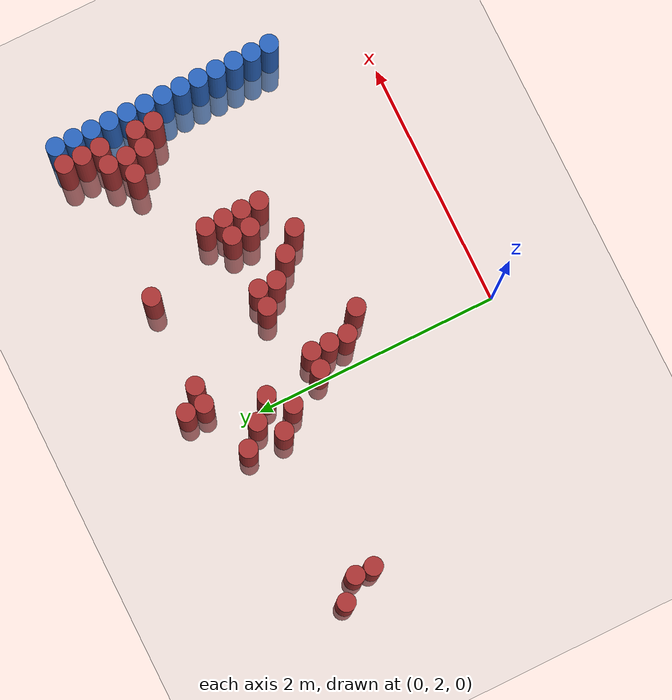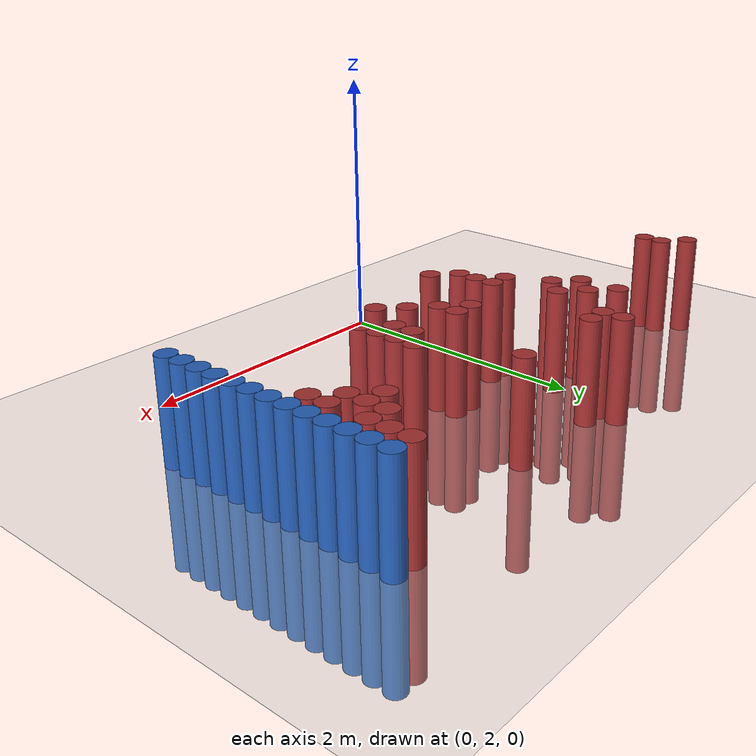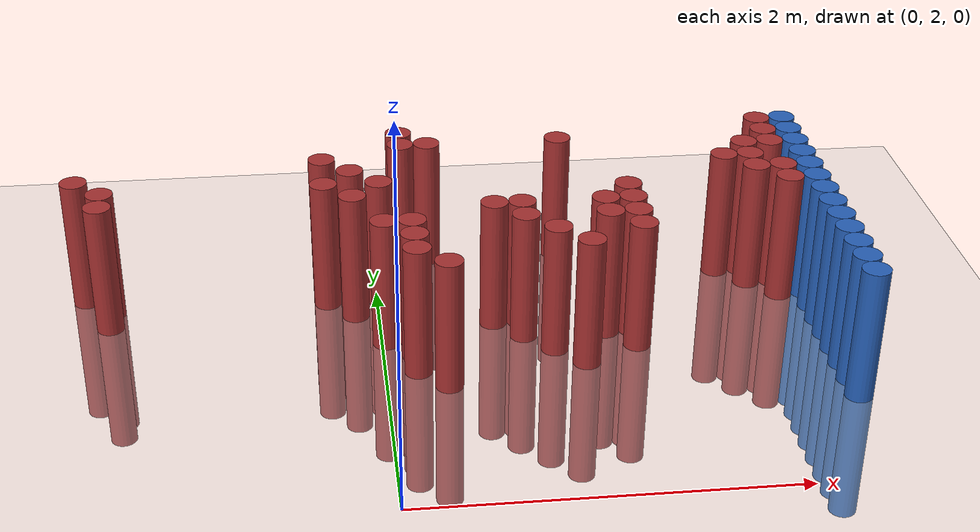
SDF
<sdf version="1.6">
 <world name="default">
  <model name="ground_plane">
   <static>1</static>
   <link name="link">
    <collision name="collision">
     <geometry><plane><normal>0 0 1</normal><size>100 100</size></plane></geometry>
     <surface><friction><ode><mu>100</mu><mu2>50</mu2></ode></friction></surface>
    </collision>
    <visual name="visual">
     <cast_shadows>0</cast_shadows>
     <geometry><plane><normal>0 0 1</normal><size>100 100</size></plane></geometry>
     <material>
      <script><uri>file://media/materials/scripts/gazebo.material</uri><name>Gazebo/Grey</name></script>
     </material>
    </visual>
   </link>
  </model>
  <model name="unit_cylinder_148">
   <static>1</static>
   <pose>-1.625000 4.075000 0.000000 0.000000 0.000000 0.000000</pose>
   <link name="link">
    <inertial>
     <mass>1</mass>
     <inertia><ixx>0.145833</ixx><ixy>0</ixy><ixz>0</ixz><iyy>0.145833</iyy><iyz>0</iyz><izz>0.125</izz></inertia>
    </inertial>
    <collision name="collision">
     <geometry><cylinder><radius>0.075000</radius><length>1.5</length></cylinder></geometry>
    </collision>
    <visual name="visual">
     <geometry><cylinder><radius>0.075000</radius><length>1.5</length></cylinder></geometry>
     <material>
      <ambient>0.648000 0.192000 0.192000 1</ambient>
      <diffuse>0.648000 0.192000 0.192000 1</diffuse>
     </material>
     <material>
      <script><name>Gazebo/Grey</name><uri>file://media/materials/scripts/gazebo.material</uri></script>
     </material>
    </visual>
   </link>
  </model>
  <model name="unit_cylinder_152">
   <static>1</static>
   <pose>-1.475000 3.775000 0.000000 0.000000 0.000000 0.000000</pose>
   <link name="link">
    <inertial>
     <mass>1</mass>
     <inertia><ixx>0.145833</ixx><ixy>0</ixy><ixz>0</ixz><iyy>0.145833</iyy><iyz>0</iyz><izz>0.125</izz></inertia>
    </inertial>
    <collision name="collision">
     <geometry><cylinder><radius>0.075000</radius><length>1.5</length></cylinder></geometry>
    </collision>
    <visual name="visual">
     <geometry><cylinder><radius>0.075000</radius><length>1.5</length></cylinder></geometry>
     <material>
      <ambient>0.648000 0.192000 0.192000 1</ambient>
      <diffuse>0.648000 0.192000 0.192000 1</diffuse>
     </material>
     <material>
      <script><name>Gazebo/Grey</name><uri>file://media/materials/scripts/gazebo.material</uri></script>
     </material>
    </visual>
   </link>
  </model>
  <model name="unit_cylinder_153">
   <static>1</static>
   <pose>-1.475000 3.925000 0.000000 0.000000 0.000000 0.000000</pose>
   <link name="link">
    <inertial>
     <mass>1</mass>
     <inertia><ixx>0.145833</ixx><ixy>0</ixy><ixz>0</ixz><iyy>0.145833</iyy><iyz>0</iyz><izz>0.125</izz></inertia>
    </inertial>
    <collision name="collision">
     <geometry><cylinder><radius>0.075000</radius><length>1.5</length></cylinder></geometry>
    </collision>
    <visual name="visual">
     <geometry><cylinder><radius>0.075000</radius><length>1.5</length></cylinder></geometry>
     <material>
      <ambient>0.648000 0.192000 0.192000 1</ambient>
      <diffuse>0.648000 0.192000 0.192000 1</diffuse>
     </material>
     <material>
      <script><name>Gazebo/Grey</name><uri>file://media/materials/scripts/gazebo.material</uri></script>
     </material>
    </visual>
   </link>
  </model>
  <model name="unit_cylinder_160">
   <static>1</static>
   <pose>-0.275000 3.925000 0.000000 0.000000 0.000000 0.000000</pose>
   <link name="link">
    <inertial>
     <mass>1</mass>
     <inertia><ixx>0.145833</ixx><ixy>0</ixy><ixz>0</ixz><iyy>0.145833</iyy><iyz>0</iyz><izz>0.125</izz></inertia>
    </inertial>
    <collision name="collision">
     <geometry><cylinder><radius>0.075000</radius><length>1.5</length></cylinder></geometry>
    </collision>
    <visual name="visual">
     <geometry><cylinder><radius>0.075000</radius><length>1.5</length></cylinder></geometry>
     <material>
      <ambient>0.648000 0.192000 0.192000 1</ambient>
      <diffuse>0.648000 0.192000 0.192000 1</diffuse>
     </material>
     <material>
      <script><name>Gazebo/Grey</name><uri>file://media/materials/scripts/gazebo.material</uri></script>
     </material>
    </visual>
   </link>
  </model>
  <model name="unit_cylinder_161">
   <static>1</static>
   <pose>-0.275000 4.225000 0.000000 0.000000 0.000000 0.000000</pose>
   <link name="link">
    <inertial>
     <mass>1</mass>
     <inertia><ixx>0.145833</ixx><ixy>0</ixy><ixz>0</ixz><iyy>0.145833</iyy><iyz>0</iyz><izz>0.125</izz></inertia>
    </inertial>
    <collision name="collision">
     <geometry><cylinder><radius>0.075000</radius><length>1.5</length></cylinder></geometry>
    </collision>
    <visual name="visual">
     <geometry><cylinder><radius>0.075000</radius><length>1.5</length></cylinder></geometry>
     <material>
      <ambient>0.648000 0.192000 0.192000 1</ambient>
      <diffuse>0.648000 0.192000 0.192000 1</diffuse>
     </material>
     <material>
      <script><name>Gazebo/Grey</name><uri>file://media/materials/scripts/gazebo.material</uri></script>
     </material>
    </visual>
   </link>
  </model>
  <model name="unit_cylinder_164">
   <static>1</static>
   <pose>-0.125000 3.775000 0.000000 0.000000 0.000000 0.000000</pose>
   <link name="link">
    <inertial>
     <mass>1</mass>
     <inertia><ixx>0.145833</ixx><ixy>0</ixy><ixz>0</ixz><iyy>0.145833</iyy><iyz>0</iyz><izz>0.125</izz></inertia>
    </inertial>
    <collision name="collision">
     <geometry><cylinder><radius>0.075000</radius><length>1.5</length></cylinder></geometry>
    </collision>
    <visual name="visual">
     <geometry><cylinder><radius>0.075000</radius><length>1.5</length></cylinder></geometry>
     <material>
      <ambient>0.648000 0.192000 0.192000 1</ambient>
      <diffuse>0.648000 0.192000 0.192000 1</diffuse>
     </material>
     <material>
      <script><name>Gazebo/Grey</name><uri>file://media/materials/scripts/gazebo.material</uri></script>
     </material>
    </visual>
   </link>
  </model>
  <model name="unit_cylinder_165">
   <static>1</static>
   <pose>-0.125000 4.075000 0.000000 0.000000 0.000000 0.000000</pose>
   <link name="link">
    <inertial>
     <mass>1</mass>
     <inertia><ixx>0.145833</ixx><ixy>0</ixy><ixz>0</ixz><iyy>0.145833</iyy><iyz>0</iyz><izz>0.125</izz></inertia>
    </inertial>
    <collision name="collision">
     <geometry><cylinder><radius>0.075000</radius><length>1.5</length></cylinder></geometry>
    </collision>
    <visual name="visual">
     <geometry><cylinder><radius>0.075000</radius><length>1.5</length></cylinder></geometry>
     <material>
      <ambient>0.648000 0.192000 0.192000 1</ambient>
      <diffuse>0.648000 0.192000 0.192000 1</diffuse>
     </material>
     <material>
      <script><name>Gazebo/Grey</name><uri>file://media/materials/scripts/gazebo.material</uri></script>
     </material>
    </visual>
   </link>
  </model>
  <model name="unit_cylinder_166">
   <static>1</static>
   <pose>0.025000 3.475000 0.000000 0.000000 0.000000 0.000000</pose>
   <link name="link">
    <inertial>
     <mass>1</mass>
     <inertia><ixx>0.145833</ixx><ixy>0</ixy><ixz>0</ixz><iyy>0.145833</iyy><iyz>0</iyz><izz>0.125</izz></inertia>
    </inertial>
    <collision name="collision">
     <geometry><cylinder><radius>0.075000</radius><length>1.5</length></cylinder></geometry>
    </collision>
    <visual name="visual">
     <geometry><cylinder><radius>0.075000</radius><length>1.5</length></cylinder></geometry>
     <material>
      <ambient>0.648000 0.192000 0.192000 1</ambient>
      <diffuse>0.648000 0.192000 0.192000 1</diffuse>
     </material>
     <material>
      <script><name>Gazebo/Grey</name><uri>file://media/materials/scripts/gazebo.material</uri></script>
     </material>
    </visual>
   </link>
  </model>
  <model name="unit_cylinder_167">
   <static>1</static>
   <pose>0.025000 3.925000 0.000000 0.000000 0.000000 0.000000</pose>
   <link name="link">
    <inertial>
     <mass>1</mass>
     <inertia><ixx>0.145833</ixx><ixy>0</ixy><ixz>0</ixz><iyy>0.145833</iyy><iyz>0</iyz><izz>0.125</izz></inertia>
    </inertial>
    <collision name="collision">
     <geometry><cylinder><radius>0.075000</radius><length>1.5</length></cylinder></geometry>
    </collision>
    <visual name="visual">
     <geometry><cylinder><radius>0.075000</radius><length>1.5</length></cylinder></geometry>
     <material>
      <ambient>0.648000 0.192000 0.192000 1</ambient>
      <diffuse>0.648000 0.192000 0.192000 1</diffuse>
     </material>
     <material>
      <script><name>Gazebo/Grey</name><uri>file://media/materials/scripts/gazebo.material</uri></script>
     </material>
    </visual>
   </link>
  </model>
  <model name="unit_cylinder_168">
   <static>1</static>
   <pose>0.175000 3.175000 0.000000 0.000000 0.000000 0.000000</pose>
   <link name="link">
    <inertial>
     <mass>1</mass>
     <inertia><ixx>0.145833</ixx><ixy>0</ixy><ixz>0</ixz><iyy>0.145833</iyy><iyz>0</iyz><izz>0.125</izz></inertia>
    </inertial>
    <collision name="collision">
     <geometry><cylinder><radius>0.075000</radius><length>1.5</length></cylinder></geometry>
    </collision>
    <visual name="visual">
     <geometry><cylinder><radius>0.075000</radius><length>1.5</length></cylinder></geometry>
     <material>
      <ambient>0.648000 0.192000 0.192000 1</ambient>
      <diffuse>0.648000 0.192000 0.192000 1</diffuse>
     </material>
     <material>
      <script><name>Gazebo/Grey</name><uri>file://media/materials/scripts/gazebo.material</uri></script>
     </material>
    </visual>
   </link>
  </model>
  <model name="unit_cylinder_169">
   <static>1</static>
   <pose>0.175000 3.325000 0.000000 0.000000 0.000000 0.000000</pose>
   <link name="link">
    <inertial>
     <mass>1</mass>
     <inertia><ixx>0.145833</ixx><ixy>0</ixy><ixz>0</ixz><iyy>0.145833</iyy><iyz>0</iyz><izz>0.125</izz></inertia>
    </inertial>
    <collision name="collision">
     <geometry><cylinder><radius>0.075000</radius><length>1.5</length></cylinder></geometry>
    </collision>
    <visual name="visual">
     <geometry><cylinder><radius>0.075000</radius><length>1.5</length></cylinder></geometry>
     <material>
      <ambient>0.648000 0.192000 0.192000 1</ambient>
      <diffuse>0.648000 0.192000 0.192000 1</diffuse>
     </material>
     <material>
      <script><name>Gazebo/Grey</name><uri>file://media/materials/scripts/gazebo.material</uri></script>
     </material>
    </visual>
   </link>
  </model>
  <model name="unit_cylinder_170">
   <static>1</static>
   <pose>0.175000 3.475000 0.000000 0.000000 0.000000 0.000000</pose>
   <link name="link">
    <inertial>
     <mass>1</mass>
     <inertia><ixx>0.145833</ixx><ixy>0</ixy><ixz>0</ixz><iyy>0.145833</iyy><iyz>0</iyz><izz>0.125</izz></inertia>
    </inertial>
    <collision name="collision">
     <geometry><cylinder><radius>0.075000</radius><length>1.5</length></cylinder></geometry>
    </collision>
    <visual name="visual">
     <geometry><cylinder><radius>0.075000</radius><length>1.5</length></cylinder></geometry>
     <material>
      <ambient>0.648000 0.192000 0.192000 1</ambient>
      <diffuse>0.648000 0.192000 0.192000 1</diffuse>
     </material>
     <material>
      <script><name>Gazebo/Grey</name><uri>file://media/materials/scripts/gazebo.material</uri></script>
     </material>
    </visual>
   </link>
  </model>
  <model name="unit_cylinder_171">
   <static>1</static>
   <pose>0.175000 4.375000 0.000000 0.000000 0.000000 0.000000</pose>
   <link name="link">
    <inertial>
     <mass>1</mass>
     <inertia><ixx>0.145833</ixx><ixy>0</ixy><ixz>0</ixz><iyy>0.145833</iyy><iyz>0</iyz><izz>0.125</izz></inertia>
    </inertial>
    <collision name="collision">
     <geometry><cylinder><radius>0.075000</radius><length>1.5</length></cylinder></geometry>
    </collision>
    <visual name="visual">
     <geometry><cylinder><radius>0.075000</radius><length>1.5</length></cylinder></geometry>
     <material>
      <ambient>0.648000 0.192000 0.192000 1</ambient>
      <diffuse>0.648000 0.192000 0.192000 1</diffuse>
     </material>
     <material>
      <script><name>Gazebo/Grey</name><uri>file://media/materials/scripts/gazebo.material</uri></script>
     </material>
    </visual>
   </link>
  </model>
  <model name="unit_cylinder_172">
   <static>1</static>
   <pose>0.175000 4.525000 0.000000 0.000000 0.000000 0.000000</pose>
   <link name="link">
    <inertial>
     <mass>1</mass>
     <inertia><ixx>0.145833</ixx><ixy>0</ixy><ixz>0</ixz><iyy>0.145833</iyy><iyz>0</iyz><izz>0.125</izz></inertia>
    </inertial>
    <collision name="collision">
     <geometry><cylinder><radius>0.075000</radius><length>1.5</length></cylinder></geometry>
    </collision>
    <visual name="visual">
     <geometry><cylinder><radius>0.075000</radius><length>1.5</length></cylinder></geometry>
     <material>
      <ambient>0.648000 0.192000 0.192000 1</ambient>
      <diffuse>0.648000 0.192000 0.192000 1</diffuse>
     </material>
     <material>
      <script><name>Gazebo/Grey</name><uri>file://media/materials/scripts/gazebo.material</uri></script>
     </material>
    </visual>
   </link>
  </model>
  <model name="unit_cylinder_173">
   <static>1</static>
   <pose>0.325000 3.025000 0.000000 0.000000 0.000000 0.000000</pose>
   <link name="link">
    <inertial>
     <mass>1</mass>
     <inertia><ixx>0.145833</ixx><ixy>0</ixy><ixz>0</ixz><iyy>0.145833</iyy><iyz>0</iyz><izz>0.125</izz></inertia>
    </inertial>
    <collision name="collision">
     <geometry><cylinder><radius>0.075000</radius><length>1.5</length></cylinder></geometry>
    </collision>
    <visual name="visual">
     <geometry><cylinder><radius>0.075000</radius><length>1.5</length></cylinder></geometry>
     <material>
      <ambient>0.648000 0.192000 0.192000 1</ambient>
      <diffuse>0.648000 0.192000 0.192000 1</diffuse>
     </material>
     <material>
      <script><name>Gazebo/Grey</name><uri>file://media/materials/scripts/gazebo.material</uri></script>
     </material>
    </visual>
   </link>
  </model>
  <model name="unit_cylinder_174">
   <static>1</static>
   <pose>0.325000 4.375000 0.000000 0.000000 0.000000 0.000000</pose>
   <link name="link">
    <inertial>
     <mass>1</mass>
     <inertia><ixx>0.145833</ixx><ixy>0</ixy><ixz>0</ixz><iyy>0.145833</iyy><iyz>0</iyz><izz>0.125</izz></inertia>
    </inertial>
    <collision name="collision">
     <geometry><cylinder><radius>0.075000</radius><length>1.5</length></cylinder></geometry>
    </collision>
    <visual name="visual">
     <geometry><cylinder><radius>0.075000</radius><length>1.5</length></cylinder></geometry>
     <material>
      <ambient>0.648000 0.192000 0.192000 1</ambient>
      <diffuse>0.648000 0.192000 0.192000 1</diffuse>
     </material>
     <material>
      <script><name>Gazebo/Grey</name><uri>file://media/materials/scripts/gazebo.material</uri></script>
     </material>
    </visual>
   </link>
  </model>
  <model name="unit_cylinder_175">
   <static>1</static>
   <pose>0.625000 3.625000 0.000000 0.000000 0.000000 0.000000</pose>
   <link name="link">
    <inertial>
     <mass>1</mass>
     <inertia><ixx>0.145833</ixx><ixy>0</ixy><ixz>0</ixz><iyy>0.145833</iyy><iyz>0</iyz><izz>0.125</izz></inertia>
    </inertial>
    <collision name="collision">
     <geometry><cylinder><radius>0.075000</radius><length>1.5</length></cylinder></geometry>
    </collision>
    <visual name="visual">
     <geometry><cylinder><radius>0.075000</radius><length>1.5</length></cylinder></geometry>
     <material>
      <ambient>0.648000 0.192000 0.192000 1</ambient>
      <diffuse>0.648000 0.192000 0.192000 1</diffuse>
     </material>
     <material>
      <script><name>Gazebo/Grey</name><uri>file://media/materials/scripts/gazebo.material</uri></script>
     </material>
    </visual>
   </link>
  </model>
  <model name="unit_cylinder_176">
   <static>1</static>
   <pose>0.775000 3.475000 0.000000 0.000000 0.000000 0.000000</pose>
   <link name="link">
    <inertial>
     <mass>1</mass>
     <inertia><ixx>0.145833</ixx><ixy>0</ixy><ixz>0</ixz><iyy>0.145833</iyy><iyz>0</iyz><izz>0.125</izz></inertia>
    </inertial>
    <collision name="collision">
     <geometry><cylinder><radius>0.075000</radius><length>1.5</length></cylinder></geometry>
    </collision>
    <visual name="visual">
     <geometry><cylinder><radius>0.075000</radius><length>1.5</length></cylinder></geometry>
     <material>
      <ambient>0.648000 0.192000 0.192000 1</ambient>
      <diffuse>0.648000 0.192000 0.192000 1</diffuse>
     </material>
     <material>
      <script><name>Gazebo/Grey</name><uri>file://media/materials/scripts/gazebo.material</uri></script>
     </material>
    </visual>
   </link>
  </model>
  <model name="unit_cylinder_177">
   <static>1</static>
   <pose>0.775000 3.625000 0.000000 0.000000 0.000000 0.000000</pose>
   <link name="link">
    <inertial>
     <mass>1</mass>
     <inertia><ixx>0.145833</ixx><ixy>0</ixy><ixz>0</ixz><iyy>0.145833</iyy><iyz>0</iyz><izz>0.125</izz></inertia>
    </inertial>
    <collision name="collision">
     <geometry><cylinder><radius>0.075000</radius><length>1.5</length></cylinder></geometry>
    </collision>
    <visual name="visual">
     <geometry><cylinder><radius>0.075000</radius><length>1.5</length></cylinder></geometry>
     <material>
      <ambient>0.648000 0.192000 0.192000 1</ambient>
      <diffuse>0.648000 0.192000 0.192000 1</diffuse>
     </material>
     <material>
      <script><name>Gazebo/Grey</name><uri>file://media/materials/scripts/gazebo.material</uri></script>
     </material>
    </visual>
   </link>
  </model>
  <model name="unit_cylinder_178">
   <static>1</static>
   <pose>0.925000 3.325000 0.000000 0.000000 0.000000 0.000000</pose>
   <link name="link">
    <inertial>
     <mass>1</mass>
     <inertia><ixx>0.145833</ixx><ixy>0</ixy><ixz>0</ixz><iyy>0.145833</iyy><iyz>0</iyz><izz>0.125</izz></inertia>
    </inertial>
    <collision name="collision">
     <geometry><cylinder><radius>0.075000</radius><length>1.5</length></cylinder></geometry>
    </collision>
    <visual name="visual">
     <geometry><cylinder><radius>0.075000</radius><length>1.5</length></cylinder></geometry>
     <material>
      <ambient>0.648000 0.192000 0.192000 1</ambient>
      <diffuse>0.648000 0.192000 0.192000 1</diffuse>
     </material>
     <material>
      <script><name>Gazebo/Grey</name><uri>file://media/materials/scripts/gazebo.material</uri></script>
     </material>
    </visual>
   </link>
  </model>
  <model name="unit_cylinder_179">
   <static>1</static>
   <pose>1.075000 3.175000 0.000000 0.000000 0.000000 0.000000</pose>
   <link name="link">
    <inertial>
     <mass>1</mass>
     <inertia><ixx>0.145833</ixx><ixy>0</ixy><ixz>0</ixz><iyy>0.145833</iyy><iyz>0</iyz><izz>0.125</izz></inertia>
    </inertial>
    <collision name="collision">
     <geometry><cylinder><radius>0.075000</radius><length>1.5</length></cylinder></geometry>
    </collision>
    <visual name="visual">
     <geometry><cylinder><radius>0.075000</radius><length>1.5</length></cylinder></geometry>
     <material>
      <ambient>0.648000 0.192000 0.192000 1</ambient>
      <diffuse>0.648000 0.192000 0.192000 1</diffuse>
     </material>
     <material>
      <script><name>Gazebo/Grey</name><uri>file://media/materials/scripts/gazebo.material</uri></script>
     </material>
    </visual>
   </link>
  </model>
  <model name="unit_cylinder_180">
   <static>1</static>
   <pose>1.075000 4.375000 0.000000 0.000000 0.000000 0.000000</pose>
   <link name="link">
    <inertial>
     <mass>1</mass>
     <inertia><ixx>0.145833</ixx><ixy>0</ixy><ixz>0</ixz><iyy>0.145833</iyy><iyz>0</iyz><izz>0.125</izz></inertia>
    </inertial>
    <collision name="collision">
     <geometry><cylinder><radius>0.075000</radius><length>1.5</length></cylinder></geometry>
    </collision>
    <visual name="visual">
     <geometry><cylinder><radius>0.075000</radius><length>1.5</length></cylinder></geometry>
     <material>
      <ambient>0.648000 0.192000 0.192000 1</ambient>
      <diffuse>0.648000 0.192000 0.192000 1</diffuse>
     </material>
     <material>
      <script><name>Gazebo/Grey</name><uri>file://media/materials/scripts/gazebo.material</uri></script>
     </material>
    </visual>
   </link>
  </model>
  <model name="unit_cylinder_183">
   <static>1</static>
   <pose>1.225000 3.475000 0.000000 0.000000 0.000000 0.000000</pose>
   <link name="link">
    <inertial>
     <mass>1</mass>
     <inertia><ixx>0.145833</ixx><ixy>0</ixy><ixz>0</ixz><iyy>0.145833</iyy><iyz>0</iyz><izz>0.125</izz></inertia>
    </inertial>
    <collision name="collision">
     <geometry><cylinder><radius>0.075000</radius><length>1.5</length></cylinder></geometry>
    </collision>
    <visual name="visual">
     <geometry><cylinder><radius>0.075000</radius><length>1.5</length></cylinder></geometry>
     <material>
      <ambient>0.648000 0.192000 0.192000 1</ambient>
      <diffuse>0.648000 0.192000 0.192000 1</diffuse>
     </material>
     <material>
      <script><name>Gazebo/Grey</name><uri>file://media/materials/scripts/gazebo.material</uri></script>
     </material>
    </visual>
   </link>
  </model>
  <model name="unit_cylinder_184">
   <static>1</static>
   <pose>1.225000 3.625000 0.000000 0.000000 0.000000 0.000000</pose>
   <link name="link">
    <inertial>
     <mass>1</mass>
     <inertia><ixx>0.145833</ixx><ixy>0</ixy><ixz>0</ixz><iyy>0.145833</iyy><iyz>0</iyz><izz>0.125</izz></inertia>
    </inertial>
    <collision name="collision">
     <geometry><cylinder><radius>0.075000</radius><length>1.5</length></cylinder></geometry>
    </collision>
    <visual name="visual">
     <geometry><cylinder><radius>0.075000</radius><length>1.5</length></cylinder></geometry>
     <material>
      <ambient>0.648000 0.192000 0.192000 1</ambient>
      <diffuse>0.648000 0.192000 0.192000 1</diffuse>
     </material>
     <material>
      <script><name>Gazebo/Grey</name><uri>file://media/materials/scripts/gazebo.material</uri></script>
     </material>
    </visual>
   </link>
  </model>
  <model name="unit_cylinder_188">
   <static>1</static>
   <pose>1.375000 3.325000 0.000000 0.000000 0.000000 0.000000</pose>
   <link name="link">
    <inertial>
     <mass>1</mass>
     <inertia><ixx>0.145833</ixx><ixy>0</ixy><ixz>0</ixz><iyy>0.145833</iyy><iyz>0</iyz><izz>0.125</izz></inertia>
    </inertial>
    <collision name="collision">
     <geometry><cylinder><radius>0.075000</radius><length>1.5</length></cylinder></geometry>
    </collision>
    <visual name="visual">
     <geometry><cylinder><radius>0.075000</radius><length>1.5</length></cylinder></geometry>
     <material>
      <ambient>0.648000 0.192000 0.192000 1</ambient>
      <diffuse>0.648000 0.192000 0.192000 1</diffuse>
     </material>
     <material>
      <script><name>Gazebo/Grey</name><uri>file://media/materials/scripts/gazebo.material</uri></script>
     </material>
    </visual>
   </link>
  </model>
  <model name="unit_cylinder_189">
   <static>1</static>
   <pose>1.375000 3.475000 0.000000 0.000000 0.000000 0.000000</pose>
   <link name="link">
    <inertial>
     <mass>1</mass>
     <inertia><ixx>0.145833</ixx><ixy>0</ixy><ixz>0</ixz><iyy>0.145833</iyy><iyz>0</iyz><izz>0.125</izz></inertia>
    </inertial>
    <collision name="collision">
     <geometry><cylinder><radius>0.075000</radius><length>1.5</length></cylinder></geometry>
    </collision>
    <visual name="visual">
     <geometry><cylinder><radius>0.075000</radius><length>1.5</length></cylinder></geometry>
     <material>
      <ambient>0.648000 0.192000 0.192000 1</ambient>
      <diffuse>0.648000 0.192000 0.192000 1</diffuse>
     </material>
     <material>
      <script><name>Gazebo/Grey</name><uri>file://media/materials/scripts/gazebo.material</uri></script>
     </material>
    </visual>
   </link>
  </model>
  <model name="unit_cylinder_190">
   <static>1</static>
   <pose>1.375000 3.625000 0.000000 0.000000 0.000000 0.000000</pose>
   <link name="link">
    <inertial>
     <mass>1</mass>
     <inertia><ixx>0.145833</ixx><ixy>0</ixy><ixz>0</ixz><iyy>0.145833</iyy><iyz>0</iyz><izz>0.125</izz></inertia>
    </inertial>
    <collision name="collision">
     <geometry><cylinder><radius>0.075000</radius><length>1.5</length></cylinder></geometry>
    </collision>
    <visual name="visual">
     <geometry><cylinder><radius>0.075000</radius><length>1.5</length></cylinder></geometry>
     <material>
      <ambient>0.648000 0.192000 0.192000 1</ambient>
      <diffuse>0.648000 0.192000 0.192000 1</diffuse>
     </material>
     <material>
      <script><name>Gazebo/Grey</name><uri>file://media/materials/scripts/gazebo.material</uri></script>
     </material>
    </visual>
   </link>
  </model>
  <model name="unit_cylinder_191">
   <static>1</static>
   <pose>1.375000 3.775000 0.000000 0.000000 0.000000 0.000000</pose>
   <link name="link">
    <inertial>
     <mass>1</mass>
     <inertia><ixx>0.145833</ixx><ixy>0</ixy><ixz>0</ixz><iyy>0.145833</iyy><iyz>0</iyz><izz>0.125</izz></inertia>
    </inertial>
    <collision name="collision">
     <geometry><cylinder><radius>0.075000</radius><length>1.5</length></cylinder></geometry>
    </collision>
    <visual name="visual">
     <geometry><cylinder><radius>0.075000</radius><length>1.5</length></cylinder></geometry>
     <material>
      <ambient>0.648000 0.192000 0.192000 1</ambient>
      <diffuse>0.648000 0.192000 0.192000 1</diffuse>
     </material>
     <material>
      <script><name>Gazebo/Grey</name><uri>file://media/materials/scripts/gazebo.material</uri></script>
     </material>
    </visual>
   </link>
  </model>
  <model name="unit_cylinder_202">
   <static>1</static>
   <pose>1.975000 4.075000 0.000000 0.000000 0.000000 0.000000</pose>
   <link name="link">
    <inertial>
     <mass>1</mass>
     <inertia><ixx>0.145833</ixx><ixy>0</ixy><ixz>0</ixz><iyy>0.145833</iyy><iyz>0</iyz><izz>0.125</izz></inertia>
    </inertial>
    <collision name="collision">
     <geometry><cylinder><radius>0.075000</radius><length>1.5</length></cylinder></geometry>
    </collision>
    <visual name="visual">
     <geometry><cylinder><radius>0.075000</radius><length>1.5</length></cylinder></geometry>
     <material>
      <ambient>0.648000 0.192000 0.192000 1</ambient>
      <diffuse>0.648000 0.192000 0.192000 1</diffuse>
     </material>
     <material>
      <script><name>Gazebo/Grey</name><uri>file://media/materials/scripts/gazebo.material</uri></script>
     </material>
    </visual>
   </link>
  </model>
  <model name="unit_cylinder_204">
   <static>1</static>
   <pose>2.125000 3.925000 0.000000 0.000000 0.000000 0.000000</pose>
   <link name="link">
    <inertial>
     <mass>1</mass>
     <inertia><ixx>0.145833</ixx><ixy>0</ixy><ixz>0</ixz><iyy>0.145833</iyy><iyz>0</iyz><izz>0.125</izz></inertia>
    </inertial>
    <collision name="collision">
     <geometry><cylinder><radius>0.075000</radius><length>1.5</length></cylinder></geometry>
    </collision>
    <visual name="visual">
     <geometry><cylinder><radius>0.075000</radius><length>1.5</length></cylinder></geometry>
     <material>
      <ambient>0.648000 0.192000 0.192000 1</ambient>
      <diffuse>0.648000 0.192000 0.192000 1</diffuse>
     </material>
     <material>
      <script><name>Gazebo/Grey</name><uri>file://media/materials/scripts/gazebo.material</uri></script>
     </material>
    </visual>
   </link>
  </model>
  <model name="unit_cylinder_205">
   <static>1</static>
   <pose>2.125000 4.075000 0.000000 0.000000 0.000000 0.000000</pose>
   <link name="link">
    <inertial>
     <mass>1</mass>
     <inertia><ixx>0.145833</ixx><ixy>0</ixy><ixz>0</ixz><iyy>0.145833</iyy><iyz>0</iyz><izz>0.125</izz></inertia>
    </inertial>
    <collision name="collision">
     <geometry><cylinder><radius>0.075000</radius><length>1.5</length></cylinder></geometry>
    </collision>
    <visual name="visual">
     <geometry><cylinder><radius>0.075000</radius><length>1.5</length></cylinder></geometry>
     <material>
      <ambient>0.648000 0.192000 0.192000 1</ambient>
      <diffuse>0.648000 0.192000 0.192000 1</diffuse>
     </material>
     <material>
      <script><name>Gazebo/Grey</name><uri>file://media/materials/scripts/gazebo.material</uri></script>
     </material>
    </visual>
   </link>
  </model>
  <model name="unit_cylinder_206">
   <static>1</static>
   <pose>2.125000 4.225000 0.000000 0.000000 0.000000 0.000000</pose>
   <link name="link">
    <inertial>
     <mass>1</mass>
     <inertia><ixx>0.145833</ixx><ixy>0</ixy><ixz>0</ixz><iyy>0.145833</iyy><iyz>0</iyz><izz>0.125</izz></inertia>
    </inertial>
    <collision name="collision">
     <geometry><cylinder><radius>0.075000</radius><length>1.5</length></cylinder></geometry>
    </collision>
    <visual name="visual">
     <geometry><cylinder><radius>0.075000</radius><length>1.5</length></cylinder></geometry>
     <material>
      <ambient>0.648000 0.192000 0.192000 1</ambient>
      <diffuse>0.648000 0.192000 0.192000 1</diffuse>
     </material>
     <material>
      <script><name>Gazebo/Grey</name><uri>file://media/materials/scripts/gazebo.material</uri></script>
     </material>
    </visual>
   </link>
  </model>
  <model name="unit_cylinder_214">
   <static>1</static>
   <pose>2.275000 3.775000 0.000000 0.000000 0.000000 0.000000</pose>
   <link name="link">
    <inertial>
     <mass>1</mass>
     <inertia><ixx>0.145833</ixx><ixy>0</ixy><ixz>0</ixz><iyy>0.145833</iyy><iyz>0</iyz><izz>0.125</izz></inertia>
    </inertial>
    <collision name="collision">
     <geometry><cylinder><radius>0.075000</radius><length>1.5</length></cylinder></geometry>
    </collision>
    <visual name="visual">
     <geometry><cylinder><radius>0.075000</radius><length>1.5</length></cylinder></geometry>
     <material>
      <ambient>0.648000 0.192000 0.192000 1</ambient>
      <diffuse>0.648000 0.192000 0.192000 1</diffuse>
     </material>
     <material>
      <script><name>Gazebo/Grey</name><uri>file://media/materials/scripts/gazebo.material</uri></script>
     </material>
    </visual>
   </link>
  </model>
  <model name="unit_cylinder_215">
   <static>1</static>
   <pose>2.275000 3.925000 0.000000 0.000000 0.000000 0.000000</pose>
   <link name="link">
    <inertial>
     <mass>1</mass>
     <inertia><ixx>0.145833</ixx><ixy>0</ixy><ixz>0</ixz><iyy>0.145833</iyy><iyz>0</iyz><izz>0.125</izz></inertia>
    </inertial>
    <collision name="collision">
     <geometry><cylinder><radius>0.075000</radius><length>1.5</length></cylinder></geometry>
    </collision>
    <visual name="visual">
     <geometry><cylinder><radius>0.075000</radius><length>1.5</length></cylinder></geometry>
     <material>
      <ambient>0.648000 0.192000 0.192000 1</ambient>
      <diffuse>0.648000 0.192000 0.192000 1</diffuse>
     </material>
     <material>
      <script><name>Gazebo/Grey</name><uri>file://media/materials/scripts/gazebo.material</uri></script>
     </material>
    </visual>
   </link>
  </model>
  <model name="unit_cylinder_216">
   <static>1</static>
   <pose>2.275000 4.225000 0.000000 0.000000 0.000000 0.000000</pose>
   <link name="link">
    <inertial>
     <mass>1</mass>
     <inertia><ixx>0.145833</ixx><ixy>0</ixy><ixz>0</ixz><iyy>0.145833</iyy><iyz>0</iyz><izz>0.125</izz></inertia>
    </inertial>
    <collision name="collision">
     <geometry><cylinder><radius>0.075000</radius><length>1.5</length></cylinder></geometry>
    </collision>
    <visual name="visual">
     <geometry><cylinder><radius>0.075000</radius><length>1.5</length></cylinder></geometry>
     <material>
      <ambient>0.648000 0.192000 0.192000 1</ambient>
      <diffuse>0.648000 0.192000 0.192000 1</diffuse>
     </material>
     <material>
      <script><name>Gazebo/Grey</name><uri>file://media/materials/scripts/gazebo.material</uri></script>
     </material>
    </visual>
   </link>
  </model>
  <model name="unit_cylinder_217">
   <static>1</static>
   <pose>2.275000 4.375000 0.000000 0.000000 0.000000 0.000000</pose>
   <link name="link">
    <inertial>
     <mass>1</mass>
     <inertia><ixx>0.145833</ixx><ixy>0</ixy><ixz>0</ixz><iyy>0.145833</iyy><iyz>0</iyz><izz>0.125</izz></inertia>
    </inertial>
    <collision name="collision">
     <geometry><cylinder><radius>0.075000</radius><length>1.5</length></cylinder></geometry>
    </collision>
    <visual name="visual">
     <geometry><cylinder><radius>0.075000</radius><length>1.5</length></cylinder></geometry>
     <material>
      <ambient>0.648000 0.192000 0.192000 1</ambient>
      <diffuse>0.648000 0.192000 0.192000 1</diffuse>
     </material>
     <material>
      <script><name>Gazebo/Grey</name><uri>file://media/materials/scripts/gazebo.material</uri></script>
     </material>
    </visual>
   </link>
  </model>
  <model name="unit_cylinder_218">
   <static>1</static>
   <pose>2.275000 4.525000 0.000000 0.000000 0.000000 0.000000</pose>
   <link name="link">
    <inertial>
     <mass>1</mass>
     <inertia><ixx>0.145833</ixx><ixy>0</ixy><ixz>0</ixz><iyy>0.145833</iyy><iyz>0</iyz><izz>0.125</izz></inertia>
    </inertial>
    <collision name="collision">
     <geometry><cylinder><radius>0.075000</radius><length>1.5</length></cylinder></geometry>
    </collision>
    <visual name="visual">
     <geometry><cylinder><radius>0.075000</radius><length>1.5</length></cylinder></geometry>
     <material>
      <ambient>0.648000 0.192000 0.192000 1</ambient>
      <diffuse>0.648000 0.192000 0.192000 1</diffuse>
     </material>
     <material>
      <script><name>Gazebo/Grey</name><uri>file://media/materials/scripts/gazebo.material</uri></script>
     </material>
    </visual>
   </link>
  </model>
  <model name="unit_cylinder_236">
   <static>1</static>
   <pose>2.425000 2.725000 0.000000 0.000000 0.000000 0.000000</pose>
   <link name="link">
    <inertial>
     <mass>1</mass>
     <inertia><ixx>0.145833</ixx><ixy>0</ixy><ixz>0</ixz><iyy>0.145833</iyy><iyz>0</iyz><izz>0.125</izz></inertia>
    </inertial>
    <collision name="collision">
     <geometry><cylinder><radius>0.075000</radius><length>1.5</length></cylinder></geometry>
    </collision>
    <visual name="visual">
     <geometry><cylinder><radius>0.075000</radius><length>1.5</length></cylinder></geometry>
     <material>
      <ambient>0.152000 0.379000 0.720000 1</ambient>
      <diffuse>0.152000 0.379000 0.720000 1</diffuse>
     </material>
     <material>
      <script><name>Gazebo/Grey</name><uri>file://media/materials/scripts/gazebo.material</uri></script>
     </material>
    </visual>
   </link>
  </model>
  <model name="unit_cylinder_237">
   <static>1</static>
   <pose>2.425000 2.875000 0.000000 0.000000 0.000000 0.000000</pose>
   <link name="link">
    <inertial>
     <mass>1</mass>
     <inertia><ixx>0.145833</ixx><ixy>0</ixy><ixz>0</ixz><iyy>0.145833</iyy><iyz>0</iyz><izz>0.125</izz></inertia>
    </inertial>
    <collision name="collision">
     <geometry><cylinder><radius>0.075000</radius><length>1.5</length></cylinder></geometry>
    </collision>
    <visual name="visual">
     <geometry><cylinder><radius>0.075000</radius><length>1.5</length></cylinder></geometry>
     <material>
      <ambient>0.152000 0.379000 0.720000 1</ambient>
      <diffuse>0.152000 0.379000 0.720000 1</diffuse>
     </material>
     <material>
      <script><name>Gazebo/Grey</name><uri>file://media/materials/scripts/gazebo.material</uri></script>
     </material>
    </visual>
   </link>
  </model>
  <model name="unit_cylinder_238">
   <static>1</static>
   <pose>2.425000 3.025000 0.000000 0.000000 0.000000 0.000000</pose>
   <link name="link">
    <inertial>
     <mass>1</mass>
     <inertia><ixx>0.145833</ixx><ixy>0</ixy><ixz>0</ixz><iyy>0.145833</iyy><iyz>0</iyz><izz>0.125</izz></inertia>
    </inertial>
    <collision name="collision">
     <geometry><cylinder><radius>0.075000</radius><length>1.5</length></cylinder></geometry>
    </collision>
    <visual name="visual">
     <geometry><cylinder><radius>0.075000</radius><length>1.5</length></cylinder></geometry>
     <material>
      <ambient>0.152000 0.379000 0.720000 1</ambient>
      <diffuse>0.152000 0.379000 0.720000 1</diffuse>
     </material>
     <material>
      <script><name>Gazebo/Grey</name><uri>file://media/materials/scripts/gazebo.material</uri></script>
     </material>
    </visual>
   </link>
  </model>
  <model name="unit_cylinder_239">
   <static>1</static>
   <pose>2.425000 3.175000 0.000000 0.000000 0.000000 0.000000</pose>
   <link name="link">
    <inertial>
     <mass>1</mass>
     <inertia><ixx>0.145833</ixx><ixy>0</ixy><ixz>0</ixz><iyy>0.145833</iyy><iyz>0</iyz><izz>0.125</izz></inertia>
    </inertial>
    <collision name="collision">
     <geometry><cylinder><radius>0.075000</radius><length>1.5</length></cylinder></geometry>
    </collision>
    <visual name="visual">
     <geometry><cylinder><radius>0.075000</radius><length>1.5</length></cylinder></geometry>
     <material>
      <ambient>0.152000 0.379000 0.720000 1</ambient>
      <diffuse>0.152000 0.379000 0.720000 1</diffuse>
     </material>
     <material>
      <script><name>Gazebo/Grey</name><uri>file://media/materials/scripts/gazebo.material</uri></script>
     </material>
    </visual>
   </link>
  </model>
  <model name="unit_cylinder_240">
   <static>1</static>
   <pose>2.425000 3.325000 0.000000 0.000000 0.000000 0.000000</pose>
   <link name="link">
    <inertial>
     <mass>1</mass>
     <inertia><ixx>0.145833</ixx><ixy>0</ixy><ixz>0</ixz><iyy>0.145833</iyy><iyz>0</iyz><izz>0.125</izz></inertia>
    </inertial>
    <collision name="collision">
     <geometry><cylinder><radius>0.075000</radius><length>1.5</length></cylinder></geometry>
    </collision>
    <visual name="visual">
     <geometry><cylinder><radius>0.075000</radius><length>1.5</length></cylinder></geometry>
     <material>
      <ambient>0.152000 0.379000 0.720000 1</ambient>
      <diffuse>0.152000 0.379000 0.720000 1</diffuse>
     </material>
     <material>
      <script><name>Gazebo/Grey</name><uri>file://media/materials/scripts/gazebo.material</uri></script>
     </material>
    </visual>
   </link>
  </model>
  <model name="unit_cylinder_241">
   <static>1</static>
   <pose>2.425000 3.475000 0.000000 0.000000 0.000000 0.000000</pose>
   <link name="link">
    <inertial>
     <mass>1</mass>
     <inertia><ixx>0.145833</ixx><ixy>0</ixy><ixz>0</ixz><iyy>0.145833</iyy><iyz>0</iyz><izz>0.125</izz></inertia>
    </inertial>
    <collision name="collision">
     <geometry><cylinder><radius>0.075000</radius><length>1.5</length></cylinder></geometry>
    </collision>
    <visual name="visual">
     <geometry><cylinder><radius>0.075000</radius><length>1.5</length></cylinder></geometry>
     <material>
      <ambient>0.152000 0.379000 0.720000 1</ambient>
      <diffuse>0.152000 0.379000 0.720000 1</diffuse>
     </material>
     <material>
      <script><name>Gazebo/Grey</name><uri>file://media/materials/scripts/gazebo.material</uri></script>
     </material>
    </visual>
   </link>
  </model>
  <model name="unit_cylinder_242">
   <static>1</static>
   <pose>2.425000 3.625000 0.000000 0.000000 0.000000 0.000000</pose>
   <link name="link">
    <inertial>
     <mass>1</mass>
     <inertia><ixx>0.145833</ixx><ixy>0</ixy><ixz>0</ixz><iyy>0.145833</iyy><iyz>0</iyz><izz>0.125</izz></inertia>
    </inertial>
    <collision name="collision">
     <geometry><cylinder><radius>0.075000</radius><length>1.5</length></cylinder></geometry>
    </collision>
    <visual name="visual">
     <geometry><cylinder><radius>0.075000</radius><length>1.5</length></cylinder></geometry>
     <material>
      <ambient>0.152000 0.379000 0.720000 1</ambient>
      <diffuse>0.152000 0.379000 0.720000 1</diffuse>
     </material>
     <material>
      <script><name>Gazebo/Grey</name><uri>file://media/materials/scripts/gazebo.material</uri></script>
     </material>
    </visual>
   </link>
  </model>
  <model name="unit_cylinder_243">
   <static>1</static>
   <pose>2.425000 3.775000 0.000000 0.000000 0.000000 0.000000</pose>
   <link name="link">
    <inertial>
     <mass>1</mass>
     <inertia><ixx>0.145833</ixx><ixy>0</ixy><ixz>0</ixz><iyy>0.145833</iyy><iyz>0</iyz><izz>0.125</izz></inertia>
    </inertial>
    <collision name="collision">
     <geometry><cylinder><radius>0.075000</radius><length>1.5</length></cylinder></geometry>
    </collision>
    <visual name="visual">
     <geometry><cylinder><radius>0.075000</radius><length>1.5</length></cylinder></geometry>
     <material>
      <ambient>0.152000 0.379000 0.720000 1</ambient>
      <diffuse>0.152000 0.379000 0.720000 1</diffuse>
     </material>
     <material>
      <script><name>Gazebo/Grey</name><uri>file://media/materials/scripts/gazebo.material</uri></script>
     </material>
    </visual>
   </link>
  </model>
  <model name="unit_cylinder_244">
   <static>1</static>
   <pose>2.425000 3.925000 0.000000 0.000000 0.000000 0.000000</pose>
   <link name="link">
    <inertial>
     <mass>1</mass>
     <inertia><ixx>0.145833</ixx><ixy>0</ixy><ixz>0</ixz><iyy>0.145833</iyy><iyz>0</iyz><izz>0.125</izz></inertia>
    </inertial>
    <collision name="collision">
     <geometry><cylinder><radius>0.075000</radius><length>1.5</length></cylinder></geometry>
    </collision>
    <visual name="visual">
     <geometry><cylinder><radius>0.075000</radius><length>1.5</length></cylinder></geometry>
     <material>
      <ambient>0.152000 0.379000 0.720000 1</ambient>
      <diffuse>0.152000 0.379000 0.720000 1</diffuse>
     </material>
     <material>
      <script><name>Gazebo/Grey</name><uri>file://media/materials/scripts/gazebo.material</uri></script>
     </material>
    </visual>
   </link>
  </model>
  <model name="unit_cylinder_245">
   <static>1</static>
   <pose>2.425000 4.075000 0.000000 0.000000 0.000000 0.000000</pose>
   <link name="link">
    <inertial>
     <mass>1</mass>
     <inertia><ixx>0.145833</ixx><ixy>0</ixy><ixz>0</ixz><iyy>0.145833</iyy><iyz>0</iyz><izz>0.125</izz></inertia>
    </inertial>
    <collision name="collision">
     <geometry><cylinder><radius>0.075000</radius><length>1.5</length></cylinder></geometry>
    </collision>
    <visual name="visual">
     <geometry><cylinder><radius>0.075000</radius><length>1.5</length></cylinder></geometry>
     <material>
      <ambient>0.152000 0.379000 0.720000 1</ambient>
      <diffuse>0.152000 0.379000 0.720000 1</diffuse>
     </material>
     <material>
      <script><name>Gazebo/Grey</name><uri>file://media/materials/scripts/gazebo.material</uri></script>
     </material>
    </visual>
   </link>
  </model>
  <model name="unit_cylinder_246">
   <static>1</static>
   <pose>2.425000 4.225000 0.000000 0.000000 0.000000 0.000000</pose>
   <link name="link">
    <inertial>
     <mass>1</mass>
     <inertia><ixx>0.145833</ixx><ixy>0</ixy><ixz>0</ixz><iyy>0.145833</iyy><iyz>0</iyz><izz>0.125</izz></inertia>
    </inertial>
    <collision name="collision">
     <geometry><cylinder><radius>0.075000</radius><length>1.5</length></cylinder></geometry>
    </collision>
    <visual name="visual">
     <geometry><cylinder><radius>0.075000</radius><length>1.5</length></cylinder></geometry>
     <material>
      <ambient>0.152000 0.379000 0.720000 1</ambient>
      <diffuse>0.152000 0.379000 0.720000 1</diffuse>
     </material>
     <material>
      <script><name>Gazebo/Grey</name><uri>file://media/materials/scripts/gazebo.material</uri></script>
     </material>
    </visual>
   </link>
  </model>
  <model name="unit_cylinder_247">
   <static>1</static>
   <pose>2.425000 4.375000 0.000000 0.000000 0.000000 0.000000</pose>
   <link name="link">
    <inertial>
     <mass>1</mass>
     <inertia><ixx>0.145833</ixx><ixy>0</ixy><ixz>0</ixz><iyy>0.145833</iyy><iyz>0</iyz><izz>0.125</izz></inertia>
    </inertial>
    <collision name="collision">
     <geometry><cylinder><radius>0.075000</radius><length>1.5</length></cylinder></geometry>
    </collision>
    <visual name="visual">
     <geometry><cylinder><radius>0.075000</radius><length>1.5</length></cylinder></geometry>
     <material>
      <ambient>0.152000 0.379000 0.720000 1</ambient>
      <diffuse>0.152000 0.379000 0.720000 1</diffuse>
     </material>
     <material>
      <script><name>Gazebo/Grey</name><uri>file://media/materials/scripts/gazebo.material</uri></script>
     </material>
    </visual>
   </link>
  </model>
  <model name="unit_cylinder_248">
   <static>1</static>
   <pose>2.425000 4.525000 0.000000 0.000000 0.000000 0.000000</pose>
   <link name="link">
    <inertial>
     <mass>1</mass>
     <inertia><ixx>0.145833</ixx><ixy>0</ixy><ixz>0</ixz><iyy>0.145833</iyy><iyz>0</iyz><izz>0.125</izz></inertia>
    </inertial>
    <collision name="collision">
     <geometry><cylinder><radius>0.075000</radius><length>1.5</length></cylinder></geometry>
    </collision>
    <visual name="visual">
     <geometry><cylinder><radius>0.075000</radius><length>1.5</length></cylinder></geometry>
     <material>
      <ambient>0.152000 0.379000 0.720000 1</ambient>
      <diffuse>0.152000 0.379000 0.720000 1</diffuse>
     </material>
     <material>
      <script><name>Gazebo/Grey</name><uri>file://media/materials/scripts/gazebo.material</uri></script>
     </material>
    </visual>
   </link>
  </model>
 </world>
</sdf>
